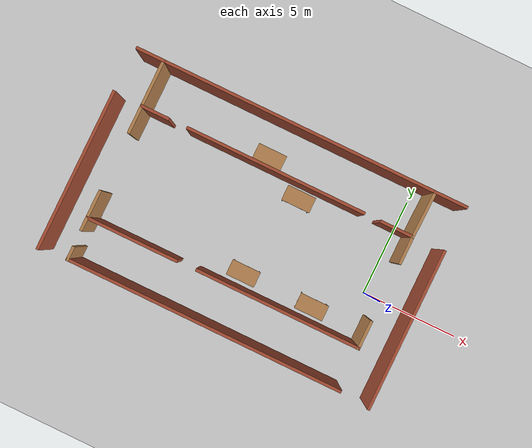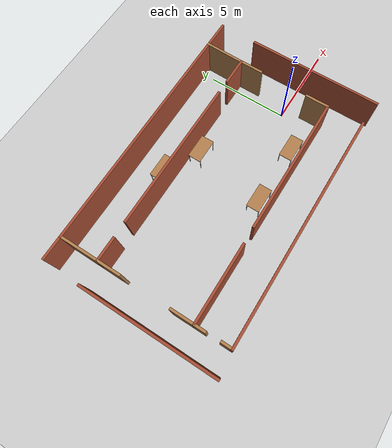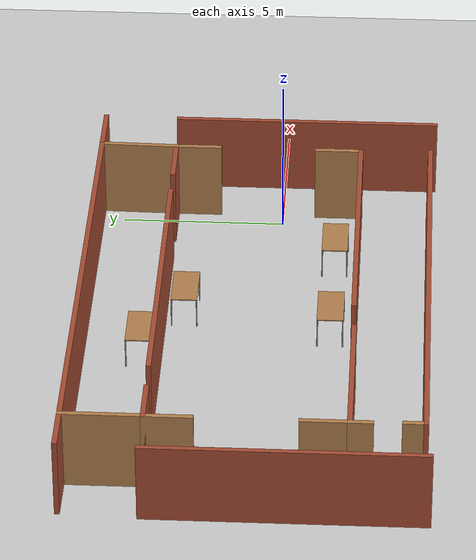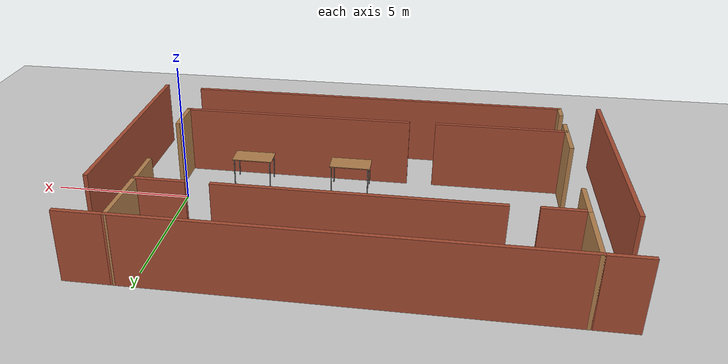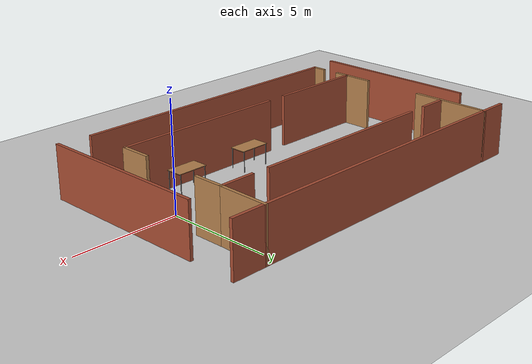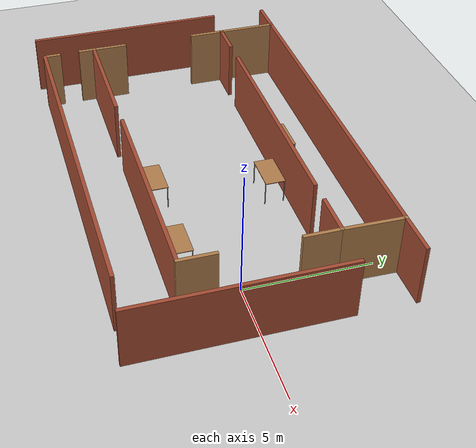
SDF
<sdf version="1.6">
 <world name="default">
  <model name="ground_plane">
   <static>1</static>
   <link name="link">
    <collision name="collision">
     <geometry><plane><normal>0 0 1</normal><size>100 100</size></plane></geometry>
     <surface><friction><ode><mu>100</mu><mu2>50</mu2></ode></friction></surface>
    </collision>
    <visual name="visual">
     <cast_shadows>0</cast_shadows>
     <geometry><plane><normal>0 0 1</normal><size>100 100</size></plane></geometry>
     <material>
      <script><uri>file://media/materials/scripts/gazebo.material</uri><name>Gazebo/Tertiary</name></script>
     </material>
    </visual>
   </link>
  </model>
  <light name="sun" type="directional">
   <pose>0 0 10 0 -0 0</pose>
   <diffuse>0.8 0.8 0.8 1</diffuse>
   <specular>0.2 0.2 0.2 1</specular>
   <attenuation>
    <range>1000</range>
    <constant>0.9</constant>
    <linear>0.01</linear>
    <quadratic>0.001</quadratic>
   </attenuation>
   <direction>-0.5 0.1 -0.9</direction>
  </light>
  <model name="conference-room">
   <pose>-6.39 0.5 0 0 -0 0</pose>
   <link name="Wall_1">
    <collision name="Wall_1_Collision">
     <geometry><box><size>14.25 0.15 2.5</size></box></geometry>
     <pose>0 0 1.25 0 -0 0</pose>
    </collision>
    <visual name="Wall_1_Visual">
     <pose>0 0 1.25 0 -0 0</pose>
     <geometry><box><size>14.25 0.15 2.5</size></box></geometry>
     <material>
      <script><uri>file://media/materials/scripts/gazebo.material</uri><name>Gazebo/Bricks</name></script>
      <ambient>1 1 1 1</ambient>
     </material>
     <meta><layer>0</layer></meta>
    </visual>
    <pose>-0.055133 -5.08196 0 0 -0 3.14159</pose>
   </link>
   <link name="Wall_14">
    <collision name="Wall_14_Collision">
     <geometry><box><size>8.5 0.15 2.5</size></box></geometry>
     <pose>0 0 1.25 0 -0 0</pose>
    </collision>
    <visual name="Wall_14_Visual">
     <pose>0 0 1.25 0 -0 0</pose>
     <geometry><box><size>8.5 0.15 2.5</size></box></geometry>
     <material>
      <script><uri>file://media/materials/scripts/gazebo.material</uri><name>Gazebo/Bricks</name></script>
      <ambient>1 1 1 1</ambient>
     </material>
     <meta><layer>0</layer></meta>
    </visual>
    <pose>2.7317 -2.90765 0 0 -0 0</pose>
   </link>
   <link name="Wall_16">
    <collision name="Wall_16_Collision">
     <geometry><box><size>1.5 0.15 2.5</size></box></geometry>
     <pose>0 0 1.25 0 -0 0</pose>
    </collision>
    <visual name="Wall_16_Visual">
     <pose>0 0 1.25 0 -0 0</pose>
     <geometry><box><size>1.5 0.15 2.5</size></box></geometry>
     <material>
      <script><uri>file://media/materials/scripts/gazebo.material</uri><name>Gazebo/Wood</name></script>
      <ambient>1 1 1 1</ambient>
     </material>
     <meta><layer>0</layer></meta>
    </visual>
    <pose>-7.13307 -2.26441 0 0 -0 1.5708</pose>
   </link>
   <link name="Wall_18">
    <collision name="Wall_18_Collision">
     <geometry><box><size>1.5 0.15 2.5</size></box></geometry>
     <pose>0 0 1.25 0 -0 0</pose>
    </collision>
    <visual name="Wall_18_Visual">
     <pose>0 0 1.25 0 -0 0</pose>
     <geometry><box><size>1.5 0.15 2.5</size></box></geometry>
     <material>
      <script><uri>file://media/materials/scripts/gazebo.material</uri><name>Gazebo/Wood</name></script>
      <ambient>1 1 1 1</ambient>
     </material>
     <meta><layer>0</layer></meta>
    </visual>
    <pose>-7.1195 2.18742 0 0 -0 1.5708</pose>
   </link>
   <link name="Wall_19">
    <collision name="Wall_19_Collision">
     <geometry><box><size>1.5 0.15 2.5</size></box></geometry>
     <pose>0 0 1.25 0 -0 0</pose>
    </collision>
    <visual name="Wall_19_Visual">
     <pose>0 0 1.25 0 -0 0</pose>
     <geometry><box><size>1.5 0.15 2.5</size></box></geometry>
     <material>
      <script><uri>file://media/materials/scripts/gazebo.material</uri><name>Gazebo/Bricks</name></script>
      <ambient>1 1 1 1</ambient>
     </material>
     <meta><layer>0</layer></meta>
    </visual>
    <pose>-6.4445 2.86242 0 0 -0 0</pose>
   </link>
   <link name="Wall_22">
    <collision name="Wall_22_Collision">
     <geometry><box><size>9.25 0.15 2.5</size></box></geometry>
     <pose>0 0 1.25 0 -0 0</pose>
    </collision>
    <visual name="Wall_22_Visual">
     <pose>0 0 1.25 0 -0 0</pose>
     <geometry><box><size>9.25 0.15 2.5</size></box></geometry>
     <material>
      <script><uri>file://media/materials/scripts/gazebo.material</uri><name>Gazebo/Bricks</name></script>
      <ambient>1 1 1 1</ambient>
     </material>
     <meta><layer>0</layer></meta>
    </visual>
    <pose>-0.166933 2.87736 0 0 -0 0</pose>
   </link>
   <link name="Wall_24">
    <collision name="Wall_24_Collision">
     <geometry><box><size>1.75 0.15 2.5</size></box></geometry>
     <pose>0 0 1.25 0 -0 0</pose>
    </collision>
    <visual name="Wall_24_Visual">
     <pose>0 0 1.25 0 -0 0</pose>
     <geometry><box><size>1.75 0.15 2.5</size></box></geometry>
     <material>
      <script><uri>file://media/materials/scripts/gazebo.material</uri><name>Gazebo/Bricks</name></script>
      <ambient>1 1 1 1</ambient>
     </material>
     <meta><layer>0</layer></meta>
    </visual>
    <pose>6.1308 2.87434 0 0 -0 0</pose>
   </link>
   <link name="Wall_27">
    <collision name="Wall_27_Collision">
     <geometry><box><size>2.5 0.15 2.5</size></box></geometry>
     <pose>0 0 1.25 0 -0 0</pose>
    </collision>
    <visual name="Wall_27_Visual">
     <pose>0 0 1.25 0 -0 0</pose>
     <geometry><box><size>2.5 0.15 2.5</size></box></geometry>
     <material>
      <script><uri>file://media/materials/scripts/gazebo.material</uri><name>Gazebo/Wood</name></script>
      <ambient>1 1 1 1</ambient>
     </material>
     <meta><layer>0</layer></meta>
    </visual>
    <pose>-7.1195 4.03742 0 0 -0 1.5708</pose>
   </link>
   <link name="Wall_28">
    <collision name="Wall_28_Collision">
     <geometry><box><size>14.25 0.15 2.5</size></box></geometry>
     <pose>0 0 1.25 0 -0 0</pose>
    </collision>
    <visual name="Wall_28_Visual">
     <pose>0 0 1.25 0 -0 0</pose>
     <geometry><box><size>14.25 0.15 2.5</size></box></geometry>
     <material>
      <script><uri>file://media/materials/scripts/gazebo.material</uri><name>Gazebo/Bricks</name></script>
      <ambient>1 1 1 1</ambient>
     </material>
     <meta><layer>0</layer></meta>
    </visual>
    <pose>-0.069499 5.21242 0 0 -0 0</pose>
   </link>
   <link name="Wall_29">
    <collision name="Wall_29_Collision">
     <geometry><box><size>2.4886 0.15 2.5</size></box></geometry>
     <pose>0 0 1.25 0 -0 0</pose>
    </collision>
    <visual name="Wall_29_Visual">
     <pose>0 0 1.25 0 -0 0</pose>
     <geometry><box><size>2.4886 0.15 2.5</size></box></geometry>
     <material>
      <script><uri>file://media/materials/scripts/gazebo.material</uri><name>Gazebo/Wood</name></script>
      <ambient>1 1 1 1</ambient>
     </material>
     <meta><layer>0</layer></meta>
    </visual>
    <pose>6.95565 4.04338 0 0 -0 -1.59205</pose>
   </link>
   <link name="Wall_31">
    <collision name="Wall_31_Collision">
     <geometry><box><size>1.5 0.15 2.5</size></box></geometry>
     <pose>0 0 1.25 0 -0 0</pose>
    </collision>
    <visual name="Wall_31_Visual">
     <pose>0 0 1.25 0 -0 0</pose>
     <geometry><box><size>1.5 0.15 2.5</size></box></geometry>
     <material>
      <script><uri>file://media/materials/scripts/gazebo.material</uri><name>Gazebo/Wood</name></script>
      <ambient>1 1 1 1</ambient>
     </material>
     <meta><layer>0</layer></meta>
    </visual>
    <pose>6.9067 -2.23265 0 0 -0 1.5708</pose>
   </link>
   <link name="Wall_33">
    <collision name="Wall_33_Collision">
     <geometry><box><size>1.5 0.15 2.5</size></box></geometry>
     <pose>0 0 1.25 0 -0 0</pose>
    </collision>
    <visual name="Wall_33_Visual">
     <pose>0 0 1.25 0 -0 0</pose>
     <geometry><box><size>1.5 0.15 2.5</size></box></geometry>
     <material>
      <script><uri>file://media/materials/scripts/gazebo.material</uri><name>Gazebo/Wood</name></script>
      <ambient>1 1 1 1</ambient>
     </material>
     <meta><layer>0</layer></meta>
    </visual>
    <pose>6.9308 2.19935 0 0 -0 -1.5708</pose>
   </link>
   <link name="Wall_35">
    <collision name="Wall_35_Collision">
     <geometry><box><size>8.25 0.15 2.5</size></box></geometry>
     <pose>0 0 1.25 0 -0 0</pose>
    </collision>
    <visual name="Wall_35_Visual">
     <pose>0 0 1.25 0 -0 0</pose>
     <geometry><box><size>8.25 0.15 2.5</size></box></geometry>
     <material>
      <script><uri>file://media/materials/scripts/gazebo.material</uri><name>Gazebo/Bricks</name></script>
      <ambient>1 1 1 1</ambient>
     </material>
     <meta><layer>0</layer></meta>
    </visual>
    <pose>-8.5805 -1.164 0 0 -0 -1.5708</pose>
   </link>
   <link name="Wall_37">
    <collision name="Wall_37_Collision">
     <geometry><box><size>8.25 0.15 2.5</size></box></geometry>
     <pose>0 0 1.25 0 -0 0</pose>
    </collision>
    <visual name="Wall_37_Visual">
     <pose>0 0 1.25 0 -0 0</pose>
     <geometry><box><size>8.25 0.15 2.5</size></box></geometry>
     <material>
      <script><uri>file://media/materials/scripts/gazebo.material</uri><name>Gazebo/Bricks</name></script>
      <ambient>1 1 1 1</ambient>
     </material>
     <meta><layer>0</layer></meta>
    </visual>
    <pose>8.55928 -1.164 0 0 -0 -1.5708</pose>
   </link>
   <link name="Wall_39">
    <collision name="Wall_39_Collision">
     <geometry><box><size>1.5 0.15 2.5</size></box></geometry>
     <pose>0 0 1.25 0 -0 0</pose>
    </collision>
    <visual name="Wall_39_Visual">
     <pose>0 0 1.25 0 -0 0</pose>
     <geometry><box><size>1.5 0.15 2.5</size></box></geometry>
     <material>
      <script><uri>file://media/materials/scripts/gazebo.material</uri><name>Gazebo/Bricks</name></script>
      <ambient>1 1 1 1</ambient>
     </material>
     <meta><layer>0</layer></meta>
    </visual>
    <pose>-7.7945 5.21242 0 0 -0 3.14159</pose>
   </link>
   <link name="Wall_41">
    <collision name="Wall_41_Collision">
     <geometry><box><size>1.75 0.15 2.5</size></box></geometry>
     <pose>0 0 1.25 0 -0 0</pose>
    </collision>
    <visual name="Wall_41_Visual">
     <pose>0 0 1.25 0 -0 0</pose>
     <geometry><box><size>1.75 0.15 2.5</size></box></geometry>
     <material>
      <script><uri>file://media/materials/scripts/gazebo.material</uri><name>Gazebo/Bricks</name></script>
      <ambient>1 1 1 1</ambient>
     </material>
     <meta><layer>0</layer></meta>
    </visual>
    <pose>7.7805 5.21242 0 0 -0 0</pose>
   </link>
   <link name="Wall_5">
    <collision name="Wall_5_Collision">
     <geometry><box><size>0.75 0.15 2.5</size></box></geometry>
     <pose>0 0 1.25 0 -0 0</pose>
    </collision>
    <visual name="Wall_5_Visual">
     <pose>0 0 1.25 0 -0 0</pose>
     <geometry><box><size>0.75 0.15 2.5</size></box></geometry>
     <material>
      <script><uri>file://media/materials/scripts/gazebo.material</uri><name>Gazebo/Wood</name></script>
      <ambient>1 1 1 1</ambient>
     </material>
     <meta><layer>0</layer></meta>
    </visual>
    <pose>-7.10513 -4.78196 0 0 -0 1.5708</pose>
   </link>
   <link name="Wall_8">
    <collision name="Wall_8_Collision">
     <geometry><box><size>0.75 0.15 2.5</size></box></geometry>
     <pose>0 0 1.25 0 -0 0</pose>
    </collision>
    <visual name="Wall_8_Visual">
     <pose>0 0 1.25 0 -0 0</pose>
     <geometry><box><size>0.75 0.15 2.5</size></box></geometry>
     <material>
      <script><uri>file://media/materials/scripts/gazebo.material</uri><name>Gazebo/Wood</name></script>
      <ambient>1 1 1 1</ambient>
     </material>
     <meta><layer>0</layer></meta>
    </visual>
    <pose>-7.13307 -3.23941 0 0 -0 1.5708</pose>
   </link>
   <link name="Wall_9">
    <collision name="Wall_9_Collision">
     <geometry><box><size>4.75 0.15 2.5</size></box></geometry>
     <pose>0 0 1.25 0 -0 0</pose>
    </collision>
    <visual name="Wall_9_Visual">
     <pose>0 0 1.25 0 -0 0</pose>
     <geometry><box><size>4.75 0.15 2.5</size></box></geometry>
     <material>
      <script><uri>file://media/materials/scripts/gazebo.material</uri><name>Gazebo/Bricks</name></script>
      <ambient>1 1 1 1</ambient>
     </material>
     <meta><layer>0</layer></meta>
    </visual>
    <pose>-4.83307 -2.9394 0 0 -0 0</pose>
   </link>
   <static>1</static>
  </model>
  <gravity>0 0 -9.8</gravity>
  <magnetic_field>6e-06 2.3e-05 -4.2e-05</magnetic_field>
  <atmosphere type="adiabatic"/>
  <physics name="default_physics" default="0" type="ode">
   <max_step_size>0.001</max_step_size>
   <real_time_factor>1</real_time_factor>
   <real_time_update_rate>1000</real_time_update_rate>
  </physics>
  <scene><ambient>0.4 0.4 0.4 1</ambient><background>0.7 0.7 0.7 1</background><shadows>1</shadows></scene>
  <spherical_coordinates>
   <surface_model>EARTH_WGS84</surface_model>
   <latitude_deg>0</latitude_deg>
   <longitude_deg>0</longitude_deg>
   <elevation>0</elevation>
   <heading_deg>0</heading_deg>
  </spherical_coordinates>
  <model name="table">
   <static>1</static>
   <link name="link">
    <collision name="surface">
     <pose>0 0 1 0 -0 0</pose>
     <geometry><box><size>1.5 0.8 0.03</size></box></geometry>
     <surface><friction><ode><mu>0.6</mu><mu2>0.6</mu2></ode></friction></surface>
    </collision>
    <visual name="visual1">
     <pose>0 0 1 0 -0 0</pose>
     <geometry><box><size>1.5 0.8 0.03</size></box></geometry>
     <material>
      <script><uri>file://media/materials/scripts/gazebo.material</uri><name>Gazebo/Wood</name></script>
     </material>
    </visual>
    <collision name="front_left_leg">
     <pose>0.68 0.38 0.5 0 -0 0</pose>
     <geometry><cylinder><radius>0.02</radius><length>1</length></cylinder></geometry>
    </collision>
    <visual name="front_left_leg">
     <pose>0.68 0.38 0.5 0 -0 0</pose>
     <geometry><cylinder><radius>0.02</radius><length>1</length></cylinder></geometry>
     <material>
      <script><uri>file://media/materials/scripts/gazebo.material</uri><name>Gazebo/Grey</name></script>
     </material>
    </visual>
    <collision name="front_right_leg">
     <pose>0.68 -0.38 0.5 0 -0 0</pose>
     <geometry><cylinder><radius>0.02</radius><length>1</length></cylinder></geometry>
    </collision>
    <visual name="front_right_leg">
     <pose>0.68 -0.38 0.5 0 -0 0</pose>
     <geometry><cylinder><radius>0.02</radius><length>1</length></cylinder></geometry>
     <material>
      <script><uri>file://media/materials/scripts/gazebo.material</uri><name>Gazebo/Grey</name></script>
     </material>
    </visual>
    <collision name="back_right_leg">
     <pose>-0.68 -0.38 0.5 0 -0 0</pose>
     <geometry><cylinder><radius>0.02</radius><length>1</length></cylinder></geometry>
    </collision>
    <visual name="back_right_leg">
     <pose>-0.68 -0.38 0.5 0 -0 0</pose>
     <geometry><cylinder><radius>0.02</radius><length>1</length></cylinder></geometry>
     <material>
      <script><uri>file://media/materials/scripts/gazebo.material</uri><name>Gazebo/Grey</name></script>
     </material>
    </visual>
    <collision name="back_left_leg">
     <pose>-0.68 0.38 0.5 0 -0 0</pose>
     <geometry><cylinder><radius>0.02</radius><length>1</length></cylinder></geometry>
    </collision>
    <visual name="back_left_leg">
     <pose>-0.68 0.38 0.5 0 -0 0</pose>
     <geometry><cylinder><radius>0.02</radius><length>1</length></cylinder></geometry>
     <material>
      <script><uri>file://media/materials/scripts/gazebo.material</uri><name>Gazebo/Grey</name></script>
     </material>
    </visual>
   </link>
   <pose>-5.83088 -1.68354 0 0 -0 0</pose>
  </model>
  <model name="table_0">
   <static>1</static>
   <link name="link">
    <collision name="surface">
     <pose>0 0 1 0 -0 0</pose>
     <geometry><box><size>1.5 0.8 0.03</size></box></geometry>
     <surface><friction><ode><mu>0.6</mu><mu2>0.6</mu2></ode></friction></surface>
    </collision>
    <visual name="visual1">
     <pose>0 0 1 0 -0 0</pose>
     <geometry><box><size>1.5 0.8 0.03</size></box></geometry>
     <material>
      <script><uri>file://media/materials/scripts/gazebo.material</uri><name>Gazebo/Wood</name></script>
     </material>
    </visual>
    <collision name="front_left_leg">
     <pose>0.68 0.38 0.5 0 -0 0</pose>
     <geometry><cylinder><radius>0.02</radius><length>1</length></cylinder></geometry>
    </collision>
    <visual name="front_left_leg">
     <pose>0.68 0.38 0.5 0 -0 0</pose>
     <geometry><cylinder><radius>0.02</radius><length>1</length></cylinder></geometry>
     <material>
      <script><uri>file://media/materials/scripts/gazebo.material</uri><name>Gazebo/Grey</name></script>
     </material>
    </visual>
    <collision name="front_right_leg">
     <pose>0.68 -0.38 0.5 0 -0 0</pose>
     <geometry><cylinder><radius>0.02</radius><length>1</length></cylinder></geometry>
    </collision>
    <visual name="front_right_leg">
     <pose>0.68 -0.38 0.5 0 -0 0</pose>
     <geometry><cylinder><radius>0.02</radius><length>1</length></cylinder></geometry>
     <material>
      <script><uri>file://media/materials/scripts/gazebo.material</uri><name>Gazebo/Grey</name></script>
     </material>
    </visual>
    <collision name="back_right_leg">
     <pose>-0.68 -0.38 0.5 0 -0 0</pose>
     <geometry><cylinder><radius>0.02</radius><length>1</length></cylinder></geometry>
    </collision>
    <visual name="back_right_leg">
     <pose>-0.68 -0.38 0.5 0 -0 0</pose>
     <geometry><cylinder><radius>0.02</radius><length>1</length></cylinder></geometry>
     <material>
      <script><uri>file://media/materials/scripts/gazebo.material</uri><name>Gazebo/Grey</name></script>
     </material>
    </visual>
    <collision name="back_left_leg">
     <pose>-0.68 0.38 0.5 0 -0 0</pose>
     <geometry><cylinder><radius>0.02</radius><length>1</length></cylinder></geometry>
    </collision>
    <visual name="back_left_leg">
     <pose>-0.68 0.38 0.5 0 -0 0</pose>
     <geometry><cylinder><radius>0.02</radius><length>1</length></cylinder></geometry>
     <material>
      <script><uri>file://media/materials/scripts/gazebo.material</uri><name>Gazebo/Grey</name></script>
     </material>
    </visual>
   </link>
   <pose>-2.13526 -1.70913 0 0 -0 0</pose>
  </model>
  <model name="table_1">
   <static>1</static>
   <link name="link">
    <collision name="surface">
     <pose>0 0 1 0 -0 0</pose>
     <geometry><box><size>1.5 0.8 0.03</size></box></geometry>
     <surface><friction><ode><mu>0.6</mu><mu2>0.6</mu2></ode></friction></surface>
    </collision>
    <visual name="visual1">
     <pose>0 0 1 0 -0 0</pose>
     <geometry><box><size>1.5 0.8 0.03</size></box></geometry>
     <material>
      <script><uri>file://media/materials/scripts/gazebo.material</uri><name>Gazebo/Wood</name></script>
     </material>
    </visual>
    <collision name="front_left_leg">
     <pose>0.68 0.38 0.5 0 -0 0</pose>
     <geometry><cylinder><radius>0.02</radius><length>1</length></cylinder></geometry>
    </collision>
    <visual name="front_left_leg">
     <pose>0.68 0.38 0.5 0 -0 0</pose>
     <geometry><cylinder><radius>0.02</radius><length>1</length></cylinder></geometry>
     <material>
      <script><uri>file://media/materials/scripts/gazebo.material</uri><name>Gazebo/Grey</name></script>
     </material>
    </visual>
    <collision name="front_right_leg">
     <pose>0.68 -0.38 0.5 0 -0 0</pose>
     <geometry><cylinder><radius>0.02</radius><length>1</length></cylinder></geometry>
    </collision>
    <visual name="front_right_leg">
     <pose>0.68 -0.38 0.5 0 -0 0</pose>
     <geometry><cylinder><radius>0.02</radius><length>1</length></cylinder></geometry>
     <material>
      <script><uri>file://media/materials/scripts/gazebo.material</uri><name>Gazebo/Grey</name></script>
     </material>
    </visual>
    <collision name="back_right_leg">
     <pose>-0.68 -0.38 0.5 0 -0 0</pose>
     <geometry><cylinder><radius>0.02</radius><length>1</length></cylinder></geometry>
    </collision>
    <visual name="back_right_leg">
     <pose>-0.68 -0.38 0.5 0 -0 0</pose>
     <geometry><cylinder><radius>0.02</radius><length>1</length></cylinder></geometry>
     <material>
      <script><uri>file://media/materials/scripts/gazebo.material</uri><name>Gazebo/Grey</name></script>
     </material>
    </visual>
    <collision name="back_left_leg">
     <pose>-0.68 0.38 0.5 0 -0 0</pose>
     <geometry><cylinder><radius>0.02</radius><length>1</length></cylinder></geometry>
    </collision>
    <visual name="back_left_leg">
     <pose>-0.68 0.38 0.5 0 -0 0</pose>
     <geometry><cylinder><radius>0.02</radius><length>1</length></cylinder></geometry>
     <material>
      <script><uri>file://media/materials/scripts/gazebo.material</uri><name>Gazebo/Grey</name></script>
     </material>
    </visual>
   </link>
   <pose>-4.98021 2.74479 0 0 -0 0</pose>
  </model>
  <model name="table_2">
   <static>1</static>
   <link name="link">
    <collision name="surface">
     <pose>0 0 1 0 -0 0</pose>
     <geometry><box><size>1.5 0.8 0.03</size></box></geometry>
     <surface><friction><ode><mu>0.6</mu><mu2>0.6</mu2></ode></friction></surface>
    </collision>
    <visual name="visual1">
     <pose>0 0 1 0 -0 0</pose>
     <geometry><box><size>1.5 0.8 0.03</size></box></geometry>
     <material>
      <script><uri>file://media/materials/scripts/gazebo.material</uri><name>Gazebo/Wood</name></script>
     </material>
    </visual>
    <collision name="front_left_leg">
     <pose>0.68 0.38 0.5 0 -0 0</pose>
     <geometry><cylinder><radius>0.02</radius><length>1</length></cylinder></geometry>
    </collision>
    <visual name="front_left_leg">
     <pose>0.68 0.38 0.5 0 -0 0</pose>
     <geometry><cylinder><radius>0.02</radius><length>1</length></cylinder></geometry>
     <material>
      <script><uri>file://media/materials/scripts/gazebo.material</uri><name>Gazebo/Grey</name></script>
     </material>
    </visual>
    <collision name="front_right_leg">
     <pose>0.68 -0.38 0.5 0 -0 0</pose>
     <geometry><cylinder><radius>0.02</radius><length>1</length></cylinder></geometry>
    </collision>
    <visual name="front_right_leg">
     <pose>0.68 -0.38 0.5 0 -0 0</pose>
     <geometry><cylinder><radius>0.02</radius><length>1</length></cylinder></geometry>
     <material>
      <script><uri>file://media/materials/scripts/gazebo.material</uri><name>Gazebo/Grey</name></script>
     </material>
    </visual>
    <collision name="back_right_leg">
     <pose>-0.68 -0.38 0.5 0 -0 0</pose>
     <geometry><cylinder><radius>0.02</radius><length>1</length></cylinder></geometry>
    </collision>
    <visual name="back_right_leg">
     <pose>-0.68 -0.38 0.5 0 -0 0</pose>
     <geometry><cylinder><radius>0.02</radius><length>1</length></cylinder></geometry>
     <material>
      <script><uri>file://media/materials/scripts/gazebo.material</uri><name>Gazebo/Grey</name></script>
     </material>
    </visual>
    <collision name="back_left_leg">
     <pose>-0.68 0.38 0.5 0 -0 0</pose>
     <geometry><cylinder><radius>0.02</radius><length>1</length></cylinder></geometry>
    </collision>
    <visual name="back_left_leg">
     <pose>-0.68 0.38 0.5 0 -0 0</pose>
     <geometry><cylinder><radius>0.02</radius><length>1</length></cylinder></geometry>
     <material>
      <script><uri>file://media/materials/scripts/gazebo.material</uri><name>Gazebo/Grey</name></script>
     </material>
    </visual>
   </link>
   <pose>-7.14193 3.9584 0 0 -0 0</pose>
  </model>
 </world>
</sdf>
